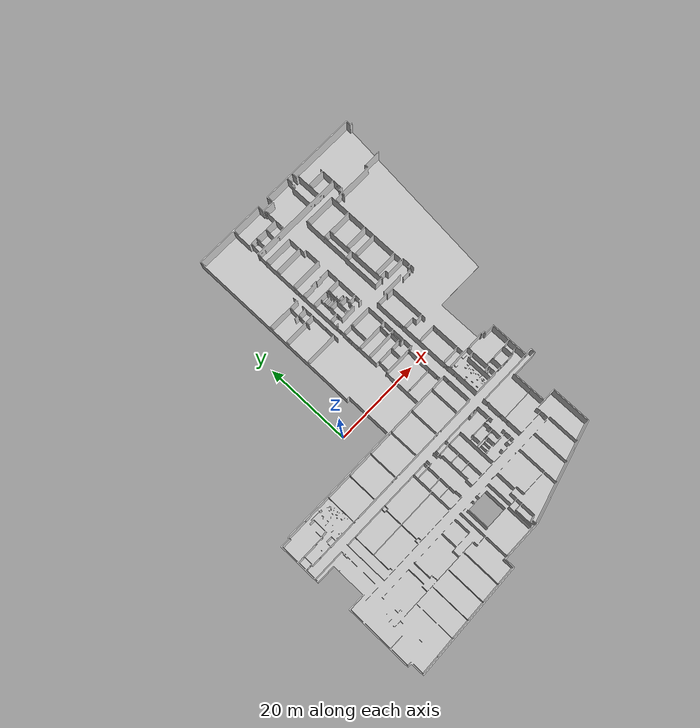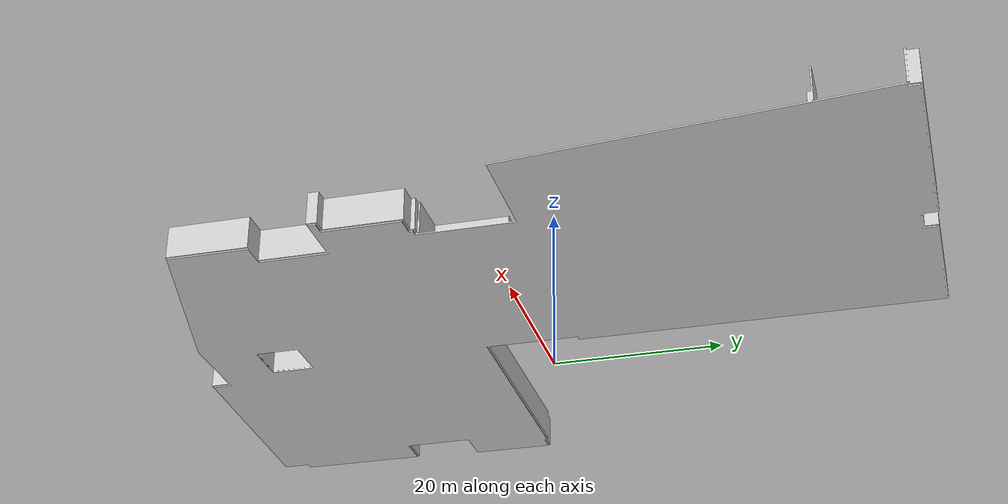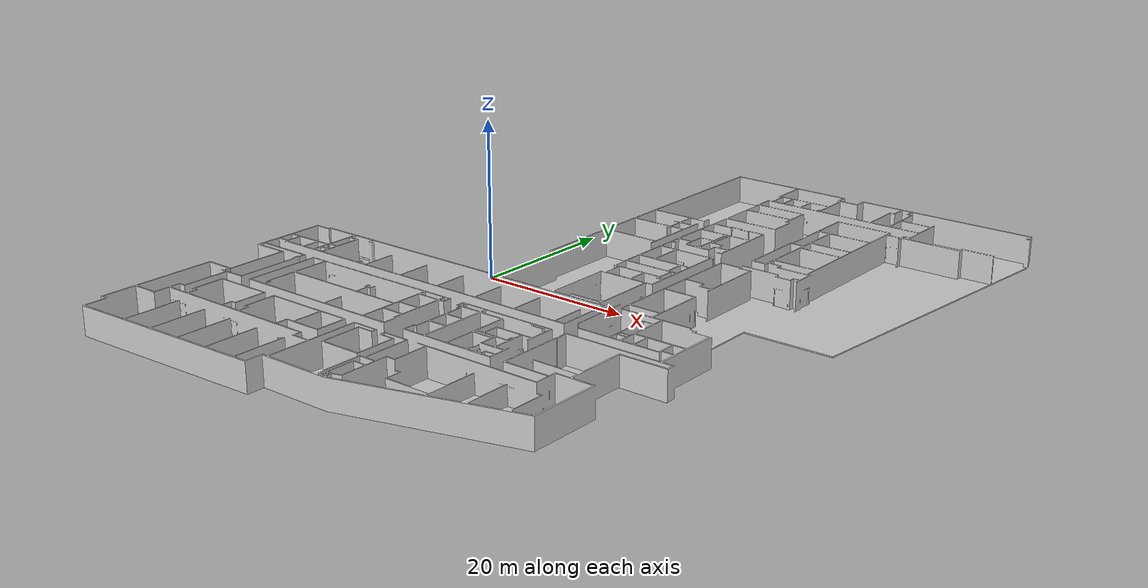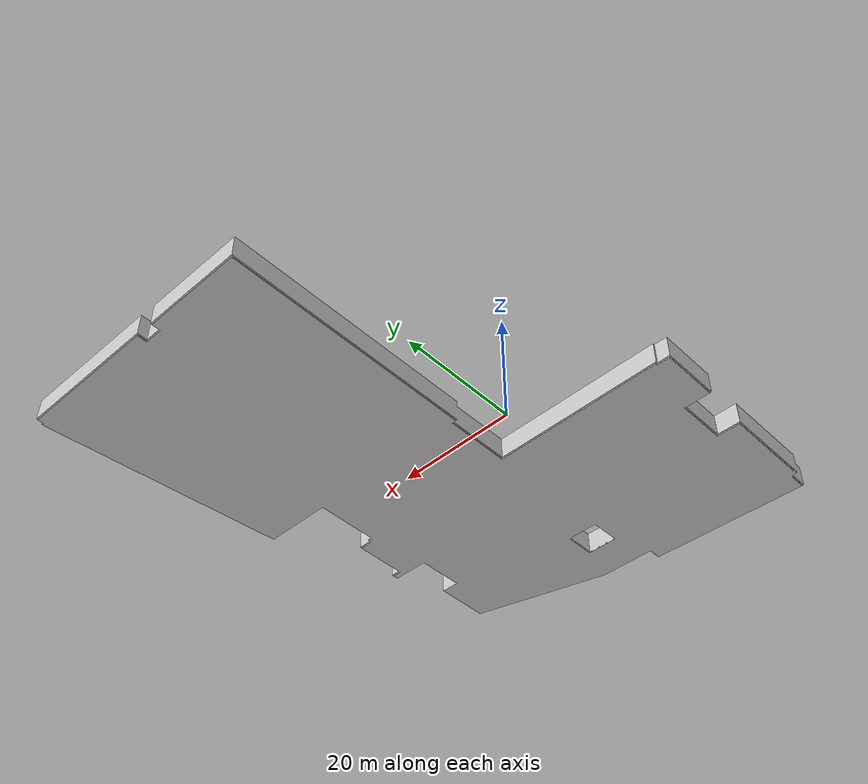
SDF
<?xml version="1.0"?>
<sdf version="1.6">
  <model name="my_floorplan">
    <static>true</static>
    <link name="floor">
      <visual name="visual">
        <geometry>
          <mesh>
            <uri>model://floor_plan/meshes/EVfloor.dae</uri>
          </mesh>
        </geometry>
        <material>
          <ambient>0.6 0.6 0.6 1</ambient>
          <diffuse>0.8 0.8 0.8 1</diffuse>
        </material>
      </visual>
      <collision name="collision">
        <geometry>
          <mesh>
            <uri>model://floor_plan/meshes/EVfloor.dae</uri>
          </mesh>
        </geometry>
      </collision>
    </link>
  </model>
</sdf>
